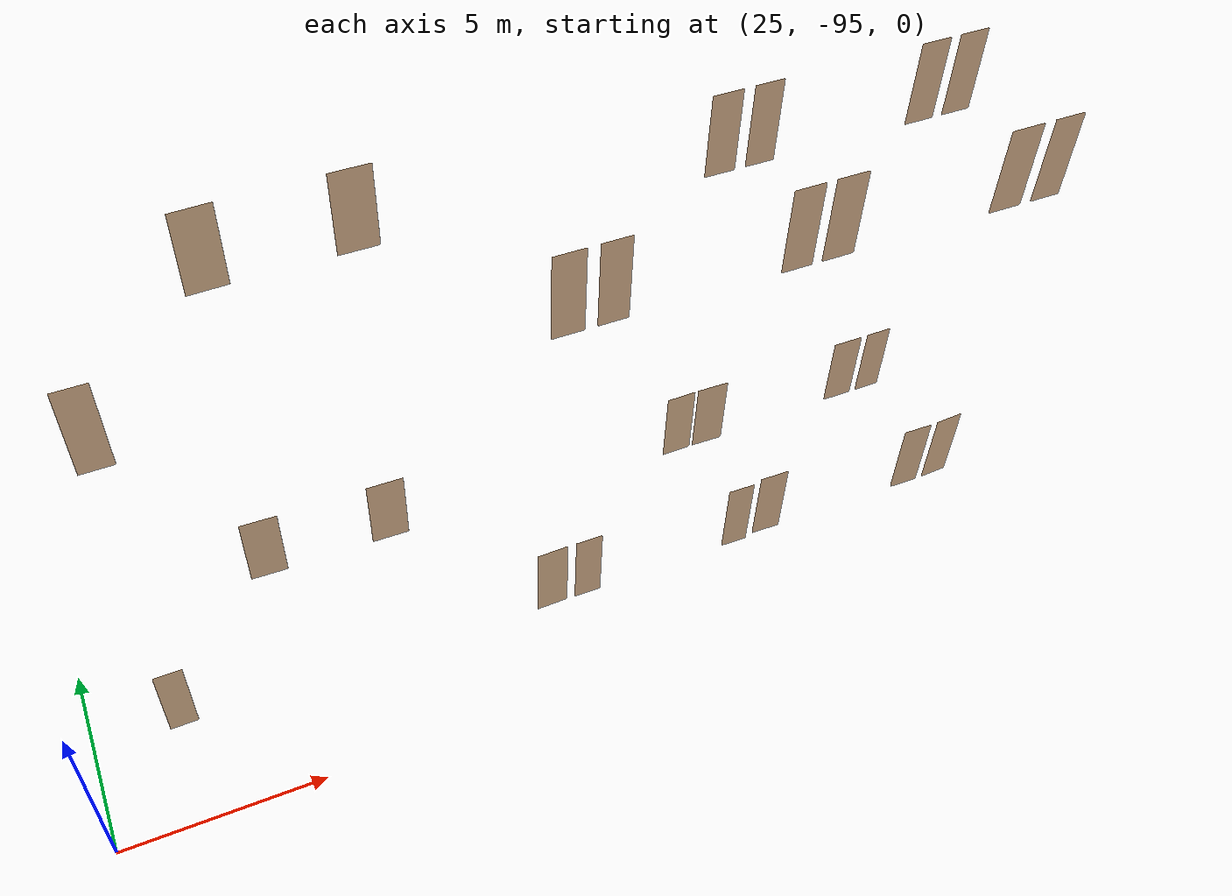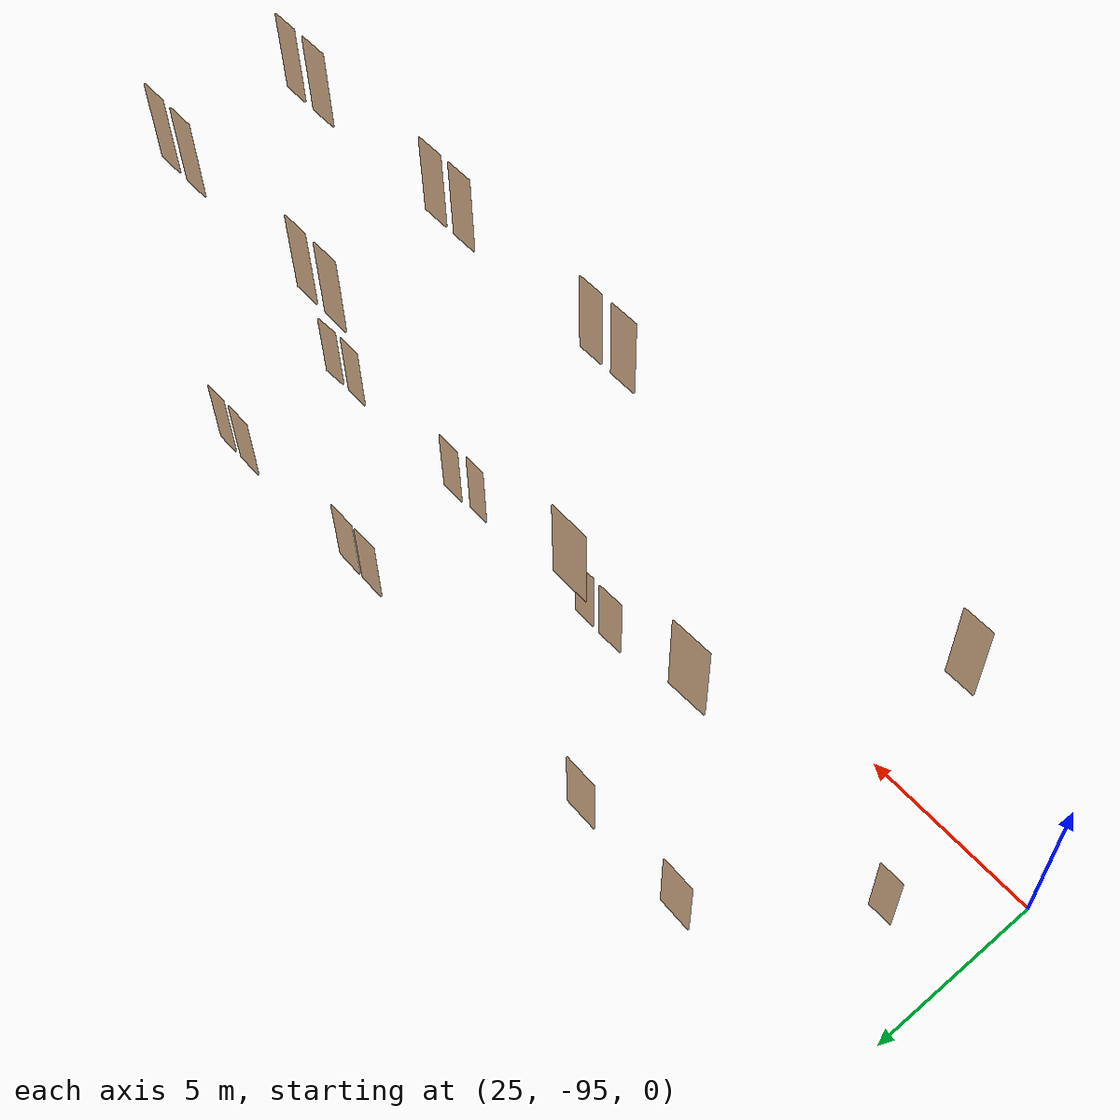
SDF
<sdf version="1.7">
 <world name="sim_world">
  <model name="part3_1">
   <pose>48.504453240539036 -92.27346916209461 0.0 0 0 -3.0840633506619977</pose>
   <link name="right">
    <pose>0 0 1.11 0 0 0</pose>
    <visual name="right_visual">
     <geometry><box><size>0.7421106349888931 0.03 2.2</size></box></geometry>
     <material>
      <ambient>0.5 0.25 0 0.6</ambient>
      <diffuse>0.5 0.25 0 0.6</diffuse>
      <pbr><metal><metalness>0.0</metalness></metal></pbr>
     </material>
    </visual>
    <collision name="right_collision">
     <geometry><box><size>0.7421106349888931 0.03 2.2</size></box></geometry>
     <surface><contact><collide_bitmask>0x02</collide_bitmask></contact></surface>
    </collision>
    <inertial>
     <mass>50.0</mass>
     <inertia><ixx>20.17041666666667</ixx><iyy>22.461367477348414</iyy><izz>2.2984508106817425</izz></inertia>
    </inertial>
   </link>
   <joint name="right_joint" type="revolute">
    <parent>world</parent>
    <child>right</child>
    <axis><xyz>0 0 -1</xyz><limit><lower>0</lower><upper>1.57</upper></limit></axis>
    <pose>0.37605531749444654 0 0 0 0 0</pose>
   </joint>
   <plugin name="register_component" filename="libregister_component.so">
    <component name="Door">
     <v_max_door>0.5</v_max_door>
     <a_max_door>0.3</a_max_door>
     <a_nom_door>0.15</a_nom_door>
     <dx_min_door>0.01</dx_min_door>
     <f_max_door>500.0</f_max_door>
     <ros_interface>true</ros_interface>
     <door name="part3_1" type="SwingDoor" left_joint_name="empty_joint" right_joint_name="right_joint"/>
    </component>
   </plugin>
  </model>
  <model name="part3_4">
   <pose>47.5148352956073 -92.29600606485037 0.0 0 0 3.1241688514080947</pose>
   <link name="right">
    <pose>0 0 1.11 0 0 0</pose>
    <visual name="right_visual">
     <geometry><box><size>0.7802032618314758 0.03 2.2</size></box></geometry>
     <material>
      <ambient>0.5 0.25 0 0.6</ambient>
      <diffuse>0.5 0.25 0 0.6</diffuse>
      <pbr><metal><metalness>0.0</metalness></metal></pbr>
     </material>
    </visual>
    <collision name="right_collision">
     <geometry><box><size>0.7802032618314758 0.03 2.2</size></box></geometry>
     <surface><contact><collide_bitmask>0x02</collide_bitmask></contact></surface>
    </collision>
    <inertial>
     <mass>50.0</mass>
     <inertia><ixx>20.17041666666667</ixx><iyy>22.702988040718648</iyy><izz>2.5400713740519767</izz></inertia>
    </inertial>
   </link>
   <joint name="right_joint" type="revolute">
    <parent>world</parent>
    <child>right</child>
    <axis><xyz>0 0 1</xyz><limit><lower>0</lower><upper>1.57</upper></limit></axis>
    <pose>0.3951016309157379 0 0 0 0 0</pose>
   </joint>
   <plugin name="register_component" filename="libregister_component.so">
    <component name="Door">
     <v_max_door>0.5</v_max_door>
     <a_max_door>0.3</a_max_door>
     <a_nom_door>0.15</a_nom_door>
     <dx_min_door>0.01</dx_min_door>
     <f_max_door>500.0</f_max_door>
     <ros_interface>true</ros_interface>
     <door name="part3_4" type="SwingDoor" left_joint_name="empty_joint" right_joint_name="right_joint"/>
    </component>
   </plugin>
  </model>
  <model name="part3_2">
   <pose>48.50427673222269 -88.65364463349557 0.0 0 0 -3.1355477843824153</pose>
   <link name="right">
    <pose>0 0 1.11 0 0 0</pose>
    <visual name="right_visual">
     <geometry><box><size>0.7226512681972751 0.03 2.2</size></box></geometry>
     <material>
      <ambient>0.5 0.25 0 0.6</ambient>
      <diffuse>0.5 0.25 0 0.6</diffuse>
      <pbr><metal><metalness>0.0</metalness></metal></pbr>
     </material>
    </visual>
    <collision name="right_collision">
     <geometry><box><size>0.7226512681972751 0.03 2.2</size></box></geometry>
     <surface><contact><collide_bitmask>0x02</collide_bitmask></contact></surface>
    </collision>
    <inertial>
     <mass>50.0</mass>
     <inertia><ixx>20.17041666666667</ixx><iyy>22.342603564279717</iyy><izz>2.179686897613042</izz></inertia>
    </inertial>
   </link>
   <joint name="right_joint" type="revolute">
    <parent>world</parent>
    <child>right</child>
    <axis><xyz>0 0 1</xyz><limit><lower>0</lower><upper>1.57</upper></limit></axis>
    <pose>0.36632563409863755 0 0 0 0 0</pose>
   </joint>
   <plugin name="register_component" filename="libregister_component.so">
    <component name="Door">
     <v_max_door>0.5</v_max_door>
     <a_max_door>0.3</a_max_door>
     <a_nom_door>0.15</a_nom_door>
     <dx_min_door>0.01</dx_min_door>
     <f_max_door>500.0</f_max_door>
     <ros_interface>true</ros_interface>
     <door name="part3_2" type="SwingDoor" left_joint_name="empty_joint" right_joint_name="right_joint"/>
    </component>
   </plugin>
  </model>
  <model name="part3_3">
   <pose>47.50300121530657 -88.66030381088514 0.0 0 0 3.141592653589793</pose>
   <link name="right">
    <pose>0 0 1.11 0 0 0</pose>
    <visual name="right_visual">
     <geometry><box><size>0.8425191217595775 0.03 2.2</size></box></geometry>
     <material>
      <ambient>0.5 0.25 0 0.6</ambient>
      <diffuse>0.5 0.25 0 0.6</diffuse>
      <pbr><metal><metalness>0.0</metalness></metal></pbr>
     </material>
    </visual>
    <collision name="right_collision">
     <geometry><box><size>0.8425191217595775 0.03 2.2</size></box></geometry>
     <surface><contact><collide_bitmask>0x02</collide_bitmask></contact></surface>
    </collision>
    <inertial>
     <mass>50.0</mass>
     <inertia><ixx>20.17041666666667</ixx><iyy>23.12432696054388</iyy><izz>2.9614102938772078</izz></inertia>
    </inertial>
   </link>
   <joint name="right_joint" type="revolute">
    <parent>world</parent>
    <child>right</child>
    <axis><xyz>0 0 -1</xyz><limit><lower>0</lower><upper>1.57</upper></limit></axis>
    <pose>0.4262595608797888 0 0 0 0 0</pose>
   </joint>
   <plugin name="register_component" filename="libregister_component.so">
    <component name="Door">
     <v_max_door>0.5</v_max_door>
     <a_max_door>0.3</a_max_door>
     <a_nom_door>0.15</a_nom_door>
     <dx_min_door>0.01</dx_min_door>
     <f_max_door>500.0</f_max_door>
     <ros_interface>true</ros_interface>
     <door name="part3_3" type="SwingDoor" left_joint_name="empty_joint" right_joint_name="right_joint"/>
    </component>
   </plugin>
  </model>
  <model name="part3_5">
   <pose>43.1260603099351 -88.81096970510038 0.0 0 0 3.126024748029792</pose>
   <link name="right">
    <pose>0 0 1.11 0 0 0</pose>
    <visual name="right_visual">
     <geometry><box><size>0.8836736214570763 0.03 2.2</size></box></geometry>
     <material>
      <ambient>0.5 0.25 0 0.6</ambient>
      <diffuse>0.5 0.25 0 0.6</diffuse>
      <pbr><metal><metalness>0.0</metalness></metal></pbr>
     </material>
    </visual>
    <collision name="right_collision">
     <geometry><box><size>0.8836736214570763 0.03 2.2</size></box></geometry>
     <surface><contact><collide_bitmask>0x02</collide_bitmask></contact></surface>
    </collision>
    <inertial>
     <mass>50.0</mass>
     <inertia><ixx>20.17041666666667</ixx><iyy>23.420329455246105</iyy><izz>3.257412788579434</izz></inertia>
    </inertial>
   </link>
   <joint name="right_joint" type="revolute">
    <parent>world</parent>
    <child>right</child>
    <axis><xyz>0 0 1</xyz><limit><lower>0</lower><upper>1.57</upper></limit></axis>
    <pose>0.44683681072853815 0 0 0 0 0</pose>
   </joint>
   <plugin name="register_component" filename="libregister_component.so">
    <component name="Door">
     <v_max_door>0.5</v_max_door>
     <a_max_door>0.3</a_max_door>
     <a_nom_door>0.15</a_nom_door>
     <dx_min_door>0.01</dx_min_door>
     <f_max_door>500.0</f_max_door>
     <ros_interface>true</ros_interface>
     <door name="part3_5" type="SwingDoor" left_joint_name="empty_joint" right_joint_name="right_joint"/>
    </component>
   </plugin>
  </model>
  <model name="part3_8">
   <pose>42.16364871503711 -88.81034390288787 0.0 0 0 0.015412548336387423</pose>
   <link name="right">
    <pose>0 0 1.11 0 0 0</pose>
    <visual name="right_visual">
     <geometry><box><size>0.8114709939374763 0.03 2.2</size></box></geometry>
     <material>
      <ambient>0.5 0.25 0 0.6</ambient>
      <diffuse>0.5 0.25 0 0.6</diffuse>
      <pbr><metal><metalness>0.0</metalness></metal></pbr>
     </material>
    </visual>
    <collision name="right_collision">
     <geometry><box><size>0.8114709939374763 0.03 2.2</size></box></geometry>
     <surface><contact><collide_bitmask>0x02</collide_bitmask></contact></surface>
    </collision>
    <inertial>
     <mass>50.0</mass>
     <inertia><ixx>20.17041666666667</ixx><iyy>22.910354891674487</iyy><izz>2.747438225007816</izz></inertia>
    </inertial>
   </link>
   <joint name="right_joint" type="revolute">
    <parent>world</parent>
    <child>right</child>
    <axis><xyz>0 0 -1</xyz><limit><lower>0</lower><upper>1.57</upper></limit></axis>
    <pose>0.4107354969687382 0 0 0 0 0</pose>
   </joint>
   <plugin name="register_component" filename="libregister_component.so">
    <component name="Door">
     <v_max_door>0.5</v_max_door>
     <a_max_door>0.3</a_max_door>
     <a_nom_door>0.15</a_nom_door>
     <dx_min_door>0.01</dx_min_door>
     <f_max_door>500.0</f_max_door>
     <ros_interface>true</ros_interface>
     <door name="part3_8" type="SwingDoor" left_joint_name="empty_joint" right_joint_name="right_joint"/>
    </component>
   </plugin>
  </model>
  <model name="part3_6">
   <pose>43.162252537892115 -92.28403559175973 0.0 0 0 3.1286053066451407</pose>
   <link name="right">
    <pose>0 0 1.11 0 0 0</pose>
    <visual name="right_visual">
     <geometry><box><size>0.7733457861193949 0.03 2.2</size></box></geometry>
     <material>
      <ambient>0.5 0.25 0 0.6</ambient>
      <diffuse>0.5 0.25 0 0.6</diffuse>
      <pbr><metal><metalness>0.0</metalness></metal></pbr>
     </material>
    </visual>
    <collision name="right_collision">
     <geometry><box><size>0.7733457861193949 0.03 2.2</size></box></geometry>
     <surface><contact><collide_bitmask>0x02</collide_bitmask></contact></surface>
    </collision>
    <inertial>
     <mass>50.0</mass>
     <inertia><ixx>20.17041666666667</ixx><iyy>22.658598770452606</iyy><izz>2.495682103785937</izz></inertia>
    </inertial>
   </link>
   <joint name="right_joint" type="revolute">
    <parent>world</parent>
    <child>right</child>
    <axis><xyz>0 0 -1</xyz><limit><lower>0</lower><upper>1.57</upper></limit></axis>
    <pose>0.39167289305969744 0 0 0 0 0</pose>
   </joint>
   <plugin name="register_component" filename="libregister_component.so">
    <component name="Door">
     <v_max_door>0.5</v_max_door>
     <a_max_door>0.3</a_max_door>
     <a_nom_door>0.15</a_nom_door>
     <dx_min_door>0.01</dx_min_door>
     <f_max_door>500.0</f_max_door>
     <ros_interface>true</ros_interface>
     <door name="part3_6" type="SwingDoor" left_joint_name="empty_joint" right_joint_name="right_joint"/>
    </component>
   </plugin>
  </model>
  <model name="part3_7">
   <pose>42.159821693814436 -92.35573006061897 0.0 0 0 3.121794162050716</pose>
   <link name="right">
    <pose>0 0 1.11 0 0 0</pose>
    <visual name="right_visual">
     <geometry><box><size>0.6951605541301751 0.03 2.2</size></box></geometry>
     <material>
      <ambient>0.5 0.25 0 0.6</ambient>
      <diffuse>0.5 0.25 0 0.6</diffuse>
      <pbr><metal><metalness>0.0</metalness></metal></pbr>
     </material>
    </visual>
    <collision name="right_collision">
     <geometry><box><size>0.6951605541301751 0.03 2.2</size></box></geometry>
     <surface><contact><collide_bitmask>0x02</collide_bitmask></contact></surface>
    </collision>
    <inertial>
     <mass>50.0</mass>
     <inertia><ixx>20.17041666666667</ixx><iyy>22.180200816744055</iyy><izz>2.017284150077384</izz></inertia>
    </inertial>
   </link>
   <joint name="right_joint" type="revolute">
    <parent>world</parent>
    <child>right</child>
    <axis><xyz>0 0 1</xyz><limit><lower>0</lower><upper>1.57</upper></limit></axis>
    <pose>0.35258027706508754 0 0 0 0 0</pose>
   </joint>
   <plugin name="register_component" filename="libregister_component.so">
    <component name="Door">
     <v_max_door>0.5</v_max_door>
     <a_max_door>0.3</a_max_door>
     <a_nom_door>0.15</a_nom_door>
     <dx_min_door>0.01</dx_min_door>
     <f_max_door>500.0</f_max_door>
     <ros_interface>true</ros_interface>
     <door name="part3_7" type="SwingDoor" left_joint_name="empty_joint" right_joint_name="right_joint"/>
    </component>
   </plugin>
  </model>
  <model name="part3_9">
   <pose>37.83918694135859 -92.38632216108452 0.0 0 0 3.137052876759596</pose>
   <link name="right">
    <pose>0 0 1.11 0 0 0</pose>
    <visual name="right_visual">
     <geometry><box><size>0.7004532943656328 0.03 2.2</size></box></geometry>
     <material>
      <ambient>0.5 0.25 0 0.6</ambient>
      <diffuse>0.5 0.25 0 0.6</diffuse>
      <pbr><metal><metalness>0.0</metalness></metal></pbr>
     </material>
    </visual>
    <collision name="right_collision">
     <geometry><box><size>0.7004532943656328 0.03 2.2</size></box></geometry>
     <surface><contact><collide_bitmask>0x02</collide_bitmask></contact></surface>
    </collision>
    <inertial>
     <mass>50.0</mass>
     <inertia><ixx>20.17041666666667</ixx><iyy>22.210978406615286</iyy><izz>2.048061739948616</izz></inertia>
    </inertial>
   </link>
   <joint name="right_joint" type="revolute">
    <parent>world</parent>
    <child>right</child>
    <axis><xyz>0 0 -1</xyz><limit><lower>0</lower><upper>1.57</upper></limit></axis>
    <pose>0.3552266471828164 0 0 0 0 0</pose>
   </joint>
   <plugin name="register_component" filename="libregister_component.so">
    <component name="Door">
     <v_max_door>0.5</v_max_door>
     <a_max_door>0.3</a_max_door>
     <a_nom_door>0.15</a_nom_door>
     <dx_min_door>0.01</dx_min_door>
     <f_max_door>500.0</f_max_door>
     <ros_interface>true</ros_interface>
     <door name="part3_9" type="SwingDoor" left_joint_name="empty_joint" right_joint_name="right_joint"/>
    </component>
   </plugin>
  </model>
  <model name="part3_10_end">
   <pose>36.84664858610179 -92.38692389398116 0.0 0 0 -3.1164861377216235</pose>
   <link name="right">
    <pose>0 0 1.11 0 0 0</pose>
    <visual name="right_visual">
     <geometry><box><size>0.8120015453154469 0.03 2.2</size></box></geometry>
     <material>
      <ambient>0.5 0.25 0 0.6</ambient>
      <diffuse>0.5 0.25 0 0.6</diffuse>
      <pbr><metal><metalness>0.0</metalness></metal></pbr>
     </material>
    </visual>
    <collision name="right_collision">
     <geometry><box><size>0.8120015453154469 0.03 2.2</size></box></geometry>
     <surface><contact><collide_bitmask>0x02</collide_bitmask></contact></surface>
    </collision>
    <inertial>
     <mass>50.0</mass>
     <inertia><ixx>20.17041666666667</ixx><iyy>22.913943789977814</iyy><izz>2.751027123311141</izz></inertia>
    </inertial>
   </link>
   <joint name="right_joint" type="revolute">
    <parent>world</parent>
    <child>right</child>
    <axis><xyz>0 0 1</xyz><limit><lower>0</lower><upper>1.57</upper></limit></axis>
    <pose>0.41100077265772345 0 0 0 0 0</pose>
   </joint>
   <plugin name="register_component" filename="libregister_component.so">
    <component name="Door">
     <v_max_door>0.5</v_max_door>
     <a_max_door>0.3</a_max_door>
     <a_nom_door>0.15</a_nom_door>
     <dx_min_door>0.01</dx_min_door>
     <f_max_door>500.0</f_max_door>
     <ros_interface>true</ros_interface>
     <door name="part3_10_end" type="SwingDoor" left_joint_name="empty_joint" right_joint_name="right_joint"/>
    </component>
   </plugin>
  </model>
  <model name="part4_8_end">
   <pose>33.65153515906184 -88.68170945579521 0.0 0 0 3.1271985868197545</pose>
   <link name="right">
    <pose>0 0 1.11 0 0 0</pose>
    <visual name="right_visual">
     <geometry><box><size>1.008943649608928 0.03 2.2</size></box></geometry>
     <material>
      <ambient>0.5 0.25 0 0.6</ambient>
      <diffuse>0.5 0.25 0 0.6</diffuse>
      <pbr><metal><metalness>0.0</metalness></metal></pbr>
     </material>
    </visual>
    <collision name="right_collision">
     <geometry><box><size>1.008943649608928 0.03 2.2</size></box></geometry>
     <surface><contact><collide_bitmask>0x02</collide_bitmask></contact></surface>
    </collision>
    <inertial>
     <mass>50.0</mass>
     <inertia><ixx>20.17041666666667</ixx><iyy>24.408197033692435</iyy><izz>4.245280367025763</izz></inertia>
    </inertial>
   </link>
   <joint name="right_joint" type="revolute">
    <parent>world</parent>
    <child>right</child>
    <axis><xyz>0 0 1</xyz><limit><lower>0</lower><upper>1.57</upper></limit></axis>
    <pose>0.509471824804464 0 0 0 0 0</pose>
   </joint>
   <plugin name="register_component" filename="libregister_component.so">
    <component name="Door">
     <v_max_door>0.5</v_max_door>
     <a_max_door>0.3</a_max_door>
     <a_nom_door>0.15</a_nom_door>
     <dx_min_door>0.01</dx_min_door>
     <f_max_door>500.0</f_max_door>
     <ros_interface>true</ros_interface>
     <door name="part4_8_end" type="SwingDoor" left_joint_name="empty_joint" right_joint_name="right_joint"/>
    </component>
   </plugin>
  </model>
  <model name="part4_7">
   <pose>30.28008190088302 -88.6619645936799 0.0 0 0 3.116813209247652</pose>
   <link name="right">
    <pose>0 0 1.11 0 0 0</pose>
    <visual name="right_visual">
     <geometry><box><size>0.9918799436666201 0.03 2.2</size></box></geometry>
     <material>
      <ambient>0.5 0.25 0 0.6</ambient>
      <diffuse>0.5 0.25 0 0.6</diffuse>
      <pbr><metal><metalness>0.0</metalness></metal></pbr>
     </material>
    </visual>
    <collision name="right_collision">
     <geometry><box><size>0.9918799436666201 0.03 2.2</size></box></geometry>
     <surface><contact><collide_bitmask>0x02</collide_bitmask></contact></surface>
    </collision>
    <inertial>
     <mass>50.0</mass>
     <inertia><ixx>20.17041666666667</ixx><iyy>24.265940927700413</iyy><izz>4.10302426103374</izz></inertia>
    </inertial>
   </link>
   <joint name="right_joint" type="revolute">
    <parent>world</parent>
    <child>right</child>
    <axis><xyz>0 0 -1</xyz><limit><lower>0</lower><upper>1.57</upper></limit></axis>
    <pose>0.5009399718333101 0 0 0 0 0</pose>
   </joint>
   <plugin name="register_component" filename="libregister_component.so">
    <component name="Door">
     <v_max_door>0.5</v_max_door>
     <a_max_door>0.3</a_max_door>
     <a_nom_door>0.15</a_nom_door>
     <dx_min_door>0.01</dx_min_door>
     <f_max_door>500.0</f_max_door>
     <ros_interface>true</ros_interface>
     <door name="part4_7" type="SwingDoor" left_joint_name="empty_joint" right_joint_name="right_joint"/>
    </component>
   </plugin>
  </model>
  <model name="part4_6">
   <pose>27.17457853681181 -92.28621787639824 0.0 0 0 -3.12595904261172</pose>
   <link name="right">
    <pose>0 0 1.11 0 0 0</pose>
    <visual name="right_visual">
     <geometry><box><size>0.7002920795516806 0.03 2.2</size></box></geometry>
     <material>
      <ambient>0.5 0.25 0 0.6</ambient>
      <diffuse>0.5 0.25 0 0.6</diffuse>
      <pbr><metal><metalness>0.0</metalness></metal></pbr>
     </material>
    </visual>
    <collision name="right_collision">
     <geometry><box><size>0.7002920795516806 0.03 2.2</size></box></geometry>
     <surface><contact><collide_bitmask>0x02</collide_bitmask></contact></surface>
    </collision>
    <inertial>
     <mass>50.0</mass>
     <inertia><ixx>20.17041666666667</ixx><iyy>22.21003748617841</iyy><izz>2.047120819511739</izz></inertia>
    </inertial>
   </link>
   <joint name="right_joint" type="revolute">
    <parent>world</parent>
    <child>right</child>
    <axis><xyz>0 0 -1</xyz><limit><lower>0</lower><upper>1.57</upper></limit></axis>
    <pose>0.3551460397758403 0 0 0 0 0</pose>
   </joint>
   <plugin name="register_component" filename="libregister_component.so">
    <component name="Door">
     <v_max_door>0.5</v_max_door>
     <a_max_door>0.3</a_max_door>
     <a_nom_door>0.15</a_nom_door>
     <dx_min_door>0.01</dx_min_door>
     <f_max_door>500.0</f_max_door>
     <ros_interface>true</ros_interface>
     <door name="part4_6" type="SwingDoor" left_joint_name="empty_joint" right_joint_name="right_joint"/>
    </component>
   </plugin>
  </model>
  <model name="L3_part1_7">
   <pose>42.3217361451933 -89.13598208051597 10.0 0 0 -3.139729998221338</pose>
   <link name="right">
    <pose>0 0 1.11 0 0 0</pose>
    <visual name="right_visual">
     <geometry><box><size>0.763631364229485 0.03 2.2</size></box></geometry>
     <material>
      <ambient>0.5 0.25 0 0.6</ambient>
      <diffuse>0.5 0.25 0 0.6</diffuse>
      <pbr><metal><metalness>0.0</metalness></metal></pbr>
     </material>
    </visual>
    <collision name="right_collision">
     <geometry><box><size>0.763631364229485 0.03 2.2</size></box></geometry>
     <surface><contact><collide_bitmask>0x02</collide_bitmask></contact></surface>
    </collision>
    <inertial>
     <mass>50.0</mass>
     <inertia><ixx>20.17041666666667</ixx><iyy>22.59638691847911</iyy><izz>2.433470251812435</izz></inertia>
    </inertial>
   </link>
   <joint name="right_joint" type="revolute">
    <parent>world</parent>
    <child>right</child>
    <axis><xyz>0 0 -1</xyz><limit><lower>0</lower><upper>1.57</upper></limit></axis>
    <pose>0.3868156821147425 0 0 0 0 0</pose>
   </joint>
   <plugin name="register_component" filename="libregister_component.so">
    <component name="Door">
     <v_max_door>0.5</v_max_door>
     <a_max_door>0.3</a_max_door>
     <a_nom_door>0.15</a_nom_door>
     <dx_min_door>0.01</dx_min_door>
     <f_max_door>500.0</f_max_door>
     <ros_interface>true</ros_interface>
     <door name="L3_part1_7" type="SwingDoor" left_joint_name="empty_joint" right_joint_name="right_joint"/>
    </component>
   </plugin>
  </model>
  <model name="L3_part1_5">
   <pose>43.364522657107266 -89.13403972637508 10.0 0 0 -3.139729998221322</pose>
   <link name="right">
    <pose>0 0 1.11 0 0 0</pose>
    <visual name="right_visual">
     <geometry><box><size>0.726455569202092 0.03 2.2</size></box></geometry>
     <material>
      <ambient>0.5 0.25 0 0.6</ambient>
      <diffuse>0.5 0.25 0 0.6</diffuse>
      <pbr><metal><metalness>0.0</metalness></metal></pbr>
     </material>
    </visual>
    <collision name="right_collision">
     <geometry><box><size>0.726455569202092 0.03 2.2</size></box></geometry>
     <surface><contact><collide_bitmask>0x02</collide_bitmask></contact></surface>
    </collision>
    <inertial>
     <mass>50.0</mass>
     <inertia><ixx>20.17041666666667</ixx><iyy>22.36557372510307</iyy><izz>2.202657058436398</izz></inertia>
    </inertial>
   </link>
   <joint name="right_joint" type="revolute">
    <parent>world</parent>
    <child>right</child>
    <axis><xyz>0 0 1</xyz><limit><lower>0</lower><upper>1.57</upper></limit></axis>
    <pose>0.368227784601046 0 0 0 0 0</pose>
   </joint>
   <plugin name="register_component" filename="libregister_component.so">
    <component name="Door">
     <v_max_door>0.5</v_max_door>
     <a_max_door>0.3</a_max_door>
     <a_nom_door>0.15</a_nom_door>
     <dx_min_door>0.01</dx_min_door>
     <f_max_door>500.0</f_max_door>
     <ros_interface>true</ros_interface>
     <door name="L3_part1_5" type="SwingDoor" left_joint_name="empty_joint" right_joint_name="right_joint"/>
    </component>
   </plugin>
  </model>
  <model name="L3_part1_3">
   <pose>47.71330762577756 -89.12593942933891 10.0 0 0 -3.1397299982213047</pose>
   <link name="right">
    <pose>0 0 1.11 0 0 0</pose>
    <visual name="right_visual">
     <geometry><box><size>0.7542768291052507 0.03 2.2</size></box></geometry>
     <material>
      <ambient>0.5 0.25 0 0.6</ambient>
      <diffuse>0.5 0.25 0 0.6</diffuse>
      <pbr><metal><metalness>0.0</metalness></metal></pbr>
     </material>
    </visual>
    <collision name="right_collision">
     <geometry><box><size>0.7542768291052507 0.03 2.2</size></box></geometry>
     <surface><contact><collide_bitmask>0x02</collide_bitmask></contact></surface>
    </collision>
    <inertial>
     <mass>50.0</mass>
     <inertia><ixx>20.17041666666667</ixx><iyy>22.537223062187802</iyy><izz>2.3743063955211317</izz></inertia>
    </inertial>
   </link>
   <joint name="right_joint" type="revolute">
    <parent>world</parent>
    <child>right</child>
    <axis><xyz>0 0 -1</xyz><limit><lower>0</lower><upper>1.57</upper></limit></axis>
    <pose>0.38213841455262537 0 0 0 0 0</pose>
   </joint>
   <plugin name="register_component" filename="libregister_component.so">
    <component name="Door">
     <v_max_door>0.5</v_max_door>
     <a_max_door>0.3</a_max_door>
     <a_nom_door>0.15</a_nom_door>
     <dx_min_door>0.01</dx_min_door>
     <f_max_door>500.0</f_max_door>
     <ros_interface>true</ros_interface>
     <door name="L3_part1_3" type="SwingDoor" left_joint_name="empty_joint" right_joint_name="right_joint"/>
    </component>
   </plugin>
  </model>
  <model name="L3_part1_2">
   <pose>48.74666691528026 -89.12401463488474 10.0 0 0 -3.1397299982213256</pose>
   <link name="right">
    <pose>0 0 1.11 0 0 0</pose>
    <visual name="right_visual">
     <geometry><box><size>0.742838122942979 0.03 2.2</size></box></geometry>
     <material>
      <ambient>0.5 0.25 0 0.6</ambient>
      <diffuse>0.5 0.25 0 0.6</diffuse>
      <pbr><metal><metalness>0.0</metalness></metal></pbr>
     </material>
    </visual>
    <collision name="right_collision">
     <geometry><box><size>0.742838122942979 0.03 2.2</size></box></geometry>
     <surface><contact><collide_bitmask>0x02</collide_bitmask></contact></surface>
    </collision>
    <inertial>
     <mass>50.0</mass>
     <inertia><ixx>20.17041666666667</ixx><iyy>22.46586865373937</iyy><izz>2.302951987072702</izz></inertia>
    </inertial>
   </link>
   <joint name="right_joint" type="revolute">
    <parent>world</parent>
    <child>right</child>
    <axis><xyz>0 0 1</xyz><limit><lower>0</lower><upper>1.57</upper></limit></axis>
    <pose>0.3764190614714895 0 0 0 0 0</pose>
   </joint>
   <plugin name="register_component" filename="libregister_component.so">
    <component name="Door">
     <v_max_door>0.5</v_max_door>
     <a_max_door>0.3</a_max_door>
     <a_nom_door>0.15</a_nom_door>
     <dx_min_door>0.01</dx_min_door>
     <f_max_door>500.0</f_max_door>
     <ros_interface>true</ros_interface>
     <door name="L3_part1_2" type="SwingDoor" left_joint_name="empty_joint" right_joint_name="right_joint"/>
    </component>
   </plugin>
  </model>
  <model name="L3_part1_1">
   <pose>48.77758573437498 -92.71689642611008 10.0 0 0 -3.1397299982213065</pose>
   <link name="right">
    <pose>0 0 1.11 0 0 0</pose>
    <visual name="right_visual">
     <geometry><box><size>0.7331281477967515 0.03 2.2</size></box></geometry>
     <material>
      <ambient>0.5 0.25 0 0.6</ambient>
      <diffuse>0.5 0.25 0 0.6</diffuse>
      <pbr><metal><metalness>0.0</metalness></metal></pbr>
     </material>
    </visual>
    <collision name="right_collision">
     <geometry><box><size>0.7331281477967515 0.03 2.2</size></box></geometry>
     <surface><contact><collide_bitmask>0x02</collide_bitmask></contact></surface>
    </collision>
    <inertial>
     <mass>50.0</mass>
     <inertia><ixx>20.17041666666667</ixx><iyy>22.406153671216234</iyy><izz>2.243237004549565</izz></inertia>
    </inertial>
   </link>
   <joint name="right_joint" type="revolute">
    <parent>world</parent>
    <child>right</child>
    <axis><xyz>0 0 -1</xyz><limit><lower>0</lower><upper>1.57</upper></limit></axis>
    <pose>0.37156407389837576 0 0 0 0 0</pose>
   </joint>
   <plugin name="register_component" filename="libregister_component.so">
    <component name="Door">
     <v_max_door>0.5</v_max_door>
     <a_max_door>0.3</a_max_door>
     <a_nom_door>0.15</a_nom_door>
     <dx_min_door>0.01</dx_min_door>
     <f_max_door>500.0</f_max_door>
     <ros_interface>true</ros_interface>
     <door name="L3_part1_1" type="SwingDoor" left_joint_name="empty_joint" right_joint_name="right_joint"/>
    </component>
   </plugin>
  </model>
  <model name="L3_part1_4">
   <pose>47.69507079073982 -92.7189127807132 10.0 0 0 -3.139729998221326</pose>
   <link name="right">
    <pose>0 0 1.11 0 0 0</pose>
    <visual name="right_visual">
     <geometry><box><size>0.8109210435190135 0.03 2.2</size></box></geometry>
     <material>
      <ambient>0.5 0.25 0 0.6</ambient>
      <diffuse>0.5 0.25 0 0.6</diffuse>
      <pbr><metal><metalness>0.0</metalness></metal></pbr>
     </material>
    </visual>
    <collision name="right_collision">
     <geometry><box><size>0.8109210435190135 0.03 2.2</size></box></geometry>
     <surface><contact><collide_bitmask>0x02</collide_bitmask></contact></surface>
    </collision>
    <inertial>
     <mass>50.0</mass>
     <inertia><ixx>20.17041666666667</ixx><iyy>22.90663724509153</iyy><izz>2.7437205784248575</izz></inertia>
    </inertial>
   </link>
   <joint name="right_joint" type="revolute">
    <parent>world</parent>
    <child>right</child>
    <axis><xyz>0 0 1</xyz><limit><lower>0</lower><upper>1.57</upper></limit></axis>
    <pose>0.41046052175950676 0 0 0 0 0</pose>
   </joint>
   <plugin name="register_component" filename="libregister_component.so">
    <component name="Door">
     <v_max_door>0.5</v_max_door>
     <a_max_door>0.3</a_max_door>
     <a_nom_door>0.15</a_nom_door>
     <dx_min_door>0.01</dx_min_door>
     <f_max_door>500.0</f_max_door>
     <ros_interface>true</ros_interface>
     <door name="L3_part1_4" type="SwingDoor" left_joint_name="empty_joint" right_joint_name="right_joint"/>
    </component>
   </plugin>
  </model>
  <model name="L3_part1_8">
   <pose>42.35403633106808 -92.72886129872808 10.0 0 0 -3.139729998221333</pose>
   <link name="right">
    <pose>0 0 1.11 0 0 0</pose>
    <visual name="right_visual">
     <geometry><box><size>0.737651929894826 0.03 2.2</size></box></geometry>
     <material>
      <ambient>0.5 0.25 0 0.6</ambient>
      <diffuse>0.5 0.25 0 0.6</diffuse>
      <pbr><metal><metalness>0.0</metalness></metal></pbr>
     </material>
    </visual>
    <collision name="right_collision">
     <geometry><box><size>0.737651929894826 0.03 2.2</size></box></geometry>
     <surface><contact><collide_bitmask>0x02</collide_bitmask></contact></surface>
    </collision>
    <inertial>
     <mass>50.0</mass>
     <inertia><ixx>20.17041666666667</ixx><iyy>22.433876540323176</iyy><izz>2.2709598736565053</izz></inertia>
    </inertial>
   </link>
   <joint name="right_joint" type="revolute">
    <parent>world</parent>
    <child>right</child>
    <axis><xyz>0 0 1</xyz><limit><lower>0</lower><upper>1.57</upper></limit></axis>
    <pose>0.373825964947413 0 0 0 0 0</pose>
   </joint>
   <plugin name="register_component" filename="libregister_component.so">
    <component name="Door">
     <v_max_door>0.5</v_max_door>
     <a_max_door>0.3</a_max_door>
     <a_nom_door>0.15</a_nom_door>
     <dx_min_door>0.01</dx_min_door>
     <f_max_door>500.0</f_max_door>
     <ros_interface>true</ros_interface>
     <door name="L3_part1_8" type="SwingDoor" left_joint_name="empty_joint" right_joint_name="right_joint"/>
    </component>
   </plugin>
  </model>
  <model name="L3_part1_6">
   <pose>43.37243485287097 -92.72696437106042 10.0 0 0 -3.139729998221346</pose>
   <link name="right">
    <pose>0 0 1.11 0 0 0</pose>
    <visual name="right_visual">
     <geometry><box><size>0.7683490227031966 0.03 2.2</size></box></geometry>
     <material>
      <ambient>0.5 0.25 0 0.6</ambient>
      <diffuse>0.5 0.25 0 0.6</diffuse>
      <pbr><metal><metalness>0.0</metalness></metal></pbr>
     </material>
    </visual>
    <collision name="right_collision">
     <geometry><box><size>0.7683490227031966 0.03 2.2</size></box></geometry>
     <surface><contact><collide_bitmask>0x02</collide_bitmask></contact></surface>
    </collision>
    <inertial>
     <mass>50.0</mass>
     <inertia><ixx>20.17041666666667</ixx><iyy>22.626500919537328</iyy><izz>2.463584252870656</izz></inertia>
    </inertial>
   </link>
   <joint name="right_joint" type="revolute">
    <parent>world</parent>
    <child>right</child>
    <axis><xyz>0 0 -1</xyz><limit><lower>0</lower><upper>1.57</upper></limit></axis>
    <pose>0.3891745113515983 0 0 0 0 0</pose>
   </joint>
   <plugin name="register_component" filename="libregister_component.so">
    <component name="Door">
     <v_max_door>0.5</v_max_door>
     <a_max_door>0.3</a_max_door>
     <a_nom_door>0.15</a_nom_door>
     <dx_min_door>0.01</dx_min_door>
     <f_max_door>500.0</f_max_door>
     <ros_interface>true</ros_interface>
     <door name="L3_part1_6" type="SwingDoor" left_joint_name="empty_joint" right_joint_name="right_joint"/>
    </component>
   </plugin>
  </model>
  <model name="L3_part1_9">
   <pose>37.9985222482002 -92.73697412979942 10.0 0 0 -3.139729998221306</pose>
   <link name="right">
    <pose>0 0 1.11 0 0 0</pose>
    <visual name="right_visual">
     <geometry><box><size>0.7053876697167601 0.03 2.2</size></box></geometry>
     <material>
      <ambient>0.5 0.25 0 0.6</ambient>
      <diffuse>0.5 0.25 0 0.6</diffuse>
      <pbr><metal><metalness>0.0</metalness></metal></pbr>
     </material>
    </visual>
    <collision name="right_collision">
     <geometry><box><size>0.7053876697167601 0.03 2.2</size></box></geometry>
     <surface><contact><collide_bitmask>0x02</collide_bitmask></contact></surface>
    </collision>
    <inertial>
     <mass>50.0</mass>
     <inertia><ixx>20.17041666666667</ixx><iyy>22.239882352451843</iyy><izz>2.0769656857851713</izz></inertia>
    </inertial>
   </link>
   <joint name="right_joint" type="revolute">
    <parent>world</parent>
    <child>right</child>
    <axis><xyz>0 0 -1</xyz><limit><lower>0</lower><upper>1.57</upper></limit></axis>
    <pose>0.3576938348583801 0 0 0 0 0</pose>
   </joint>
   <plugin name="register_component" filename="libregister_component.so">
    <component name="Door">
     <v_max_door>0.5</v_max_door>
     <a_max_door>0.3</a_max_door>
     <a_nom_door>0.15</a_nom_door>
     <dx_min_door>0.01</dx_min_door>
     <f_max_door>500.0</f_max_door>
     <ros_interface>true</ros_interface>
     <door name="L3_part1_9" type="SwingDoor" left_joint_name="empty_joint" right_joint_name="right_joint"/>
    </component>
   </plugin>
  </model>
  <model name="L3_part1_10">
   <pose>36.968547711217056 -92.73889261961884 10.0 0 0 -3.139729998221306</pose>
   <link name="right">
    <pose>0 0 1.11 0 0 0</pose>
    <visual name="right_visual">
     <geometry><box><size>0.7541637345528093 0.03 2.2</size></box></geometry>
     <material>
      <ambient>0.5 0.25 0 0.6</ambient>
      <diffuse>0.5 0.25 0 0.6</diffuse>
      <pbr><metal><metalness>0.0</metalness></metal></pbr>
     </material>
    </visual>
    <collision name="right_collision">
     <geometry><box><size>0.7541637345528093 0.03 2.2</size></box></geometry>
     <surface><contact><collide_bitmask>0x02</collide_bitmask></contact></surface>
    </collision>
    <inertial>
     <mass>50.0</mass>
     <inertia><ixx>20.17041666666667</ixx><iyy>22.536512243811007</iyy><izz>2.3735955771443344</izz></inertia>
    </inertial>
   </link>
   <joint name="right_joint" type="revolute">
    <parent>world</parent>
    <child>right</child>
    <axis><xyz>0 0 1</xyz><limit><lower>0</lower><upper>1.57</upper></limit></axis>
    <pose>0.38208186727640464 0 0 0 0 0</pose>
   </joint>
   <plugin name="register_component" filename="libregister_component.so">
    <component name="Door">
     <v_max_door>0.5</v_max_door>
     <a_max_door>0.3</a_max_door>
     <a_nom_door>0.15</a_nom_door>
     <dx_min_door>0.01</dx_min_door>
     <f_max_door>500.0</f_max_door>
     <ros_interface>true</ros_interface>
     <door name="L3_part1_10" type="SwingDoor" left_joint_name="empty_joint" right_joint_name="right_joint"/>
    </component>
   </plugin>
  </model>
  <model name="L3_part1_11">
   <pose>33.77026372902586 -88.55548115338831 10.0 0 0 -3.139729998221322</pose>
   <link name="right">
    <pose>0 0 1.11 0 0 0</pose>
    <visual name="right_visual">
     <geometry><box><size>0.9849897161071165 0.03 2.2</size></box></geometry>
     <material>
      <ambient>0.5 0.25 0 0.6</ambient>
      <diffuse>0.5 0.25 0 0.6</diffuse>
      <pbr><metal><metalness>0.0</metalness></metal></pbr>
     </material>
    </visual>
    <collision name="right_collision">
     <geometry><box><size>0.9849897161071165 0.03 2.2</size></box></geometry>
     <surface><contact><collide_bitmask>0x02</collide_bitmask></contact></surface>
    </collision>
    <inertial>
     <mass>50.0</mass>
     <inertia><ixx>20.17041666666667</ixx><iyy>24.209186420153248</iyy><izz>4.046269753486575</izz></inertia>
    </inertial>
   </link>
   <joint name="right_joint" type="revolute">
    <parent>world</parent>
    <child>right</child>
    <axis><xyz>0 0 1</xyz><limit><lower>0</lower><upper>1.57</upper></limit></axis>
    <pose>0.49749485805355825 0 0 0 0 0</pose>
   </joint>
   <plugin name="register_component" filename="libregister_component.so">
    <component name="Door">
     <v_max_door>0.5</v_max_door>
     <a_max_door>0.3</a_max_door>
     <a_nom_door>0.15</a_nom_door>
     <dx_min_door>0.01</dx_min_door>
     <f_max_door>500.0</f_max_door>
     <ros_interface>true</ros_interface>
     <door name="L3_part1_11" type="SwingDoor" left_joint_name="empty_joint" right_joint_name="right_joint"/>
    </component>
   </plugin>
  </model>
  <model name="L3_part1_12">
   <pose>30.3936249315105 -88.57652146154712 10.0 0 0 -3.1097248701794</pose>
   <link name="right">
    <pose>0 0 1.11 0 0 0</pose>
    <visual name="right_visual">
     <geometry><box><size>0.9733635434031565 0.03 2.2</size></box></geometry>
     <material>
      <ambient>0.5 0.25 0 0.6</ambient>
      <diffuse>0.5 0.25 0 0.6</diffuse>
      <pbr><metal><metalness>0.0</metalness></metal></pbr>
     </material>
    </visual>
    <collision name="right_collision">
     <geometry><box><size>0.9733635434031565 0.03 2.2</size></box></geometry>
     <surface><contact><collide_bitmask>0x02</collide_bitmask></contact></surface>
    </collision>
    <inertial>
     <mass>50.0</mass>
     <inertia><ixx>20.17041666666667</ixx><iyy>24.11431911510979</iyy><izz>3.951402448443119</izz></inertia>
    </inertial>
   </link>
   <joint name="right_joint" type="revolute">
    <parent>world</parent>
    <child>right</child>
    <axis><xyz>0 0 -1</xyz><limit><lower>0</lower><upper>1.57</upper></limit></axis>
    <pose>0.49168177170157823 0 0 0 0 0</pose>
   </joint>
   <plugin name="register_component" filename="libregister_component.so">
    <component name="Door">
     <v_max_door>0.5</v_max_door>
     <a_max_door>0.3</a_max_door>
     <a_nom_door>0.15</a_nom_door>
     <dx_min_door>0.01</dx_min_door>
     <f_max_door>500.0</f_max_door>
     <ros_interface>true</ros_interface>
     <door name="L3_part1_12" type="SwingDoor" left_joint_name="empty_joint" right_joint_name="right_joint"/>
    </component>
   </plugin>
  </model>
  <model name="L3_part1_13">
   <pose>27.263951770282276 -92.73879301650615 10.0 0 0 -3.1397299982213185</pose>
   <link name="right">
    <pose>0 0 1.11 0 0 0</pose>
    <visual name="right_visual">
     <geometry><box><size>0.7267948528594409 0.03 2.2</size></box></geometry>
     <material>
      <ambient>0.5 0.25 0 0.6</ambient>
      <diffuse>0.5 0.25 0 0.6</diffuse>
      <pbr><metal><metalness>0.0</metalness></metal></pbr>
     </material>
    </visual>
    <collision name="right_collision">
     <geometry><box><size>0.7267948528594409 0.03 2.2</size></box></geometry>
     <surface><contact><collide_bitmask>0x02</collide_bitmask></contact></surface>
    </collision>
    <inertial>
     <mass>50.0</mass>
     <inertia><ixx>20.17041666666667</ixx><iyy>22.367628158929072</iyy><izz>2.2047114922624016</izz></inertia>
    </inertial>
   </link>
   <joint name="right_joint" type="revolute">
    <parent>world</parent>
    <child>right</child>
    <axis><xyz>0 0 -1</xyz><limit><lower>0</lower><upper>1.57</upper></limit></axis>
    <pose>0.36839742642972045 0 0 0 0 0</pose>
   </joint>
   <plugin name="register_component" filename="libregister_component.so">
    <component name="Door">
     <v_max_door>0.5</v_max_door>
     <a_max_door>0.3</a_max_door>
     <a_nom_door>0.15</a_nom_door>
     <dx_min_door>0.01</dx_min_door>
     <f_max_door>500.0</f_max_door>
     <ros_interface>true</ros_interface>
     <door name="L3_part1_13" type="SwingDoor" left_joint_name="empty_joint" right_joint_name="right_joint"/>
    </component>
   </plugin>
  </model>
 </world>
</sdf>
